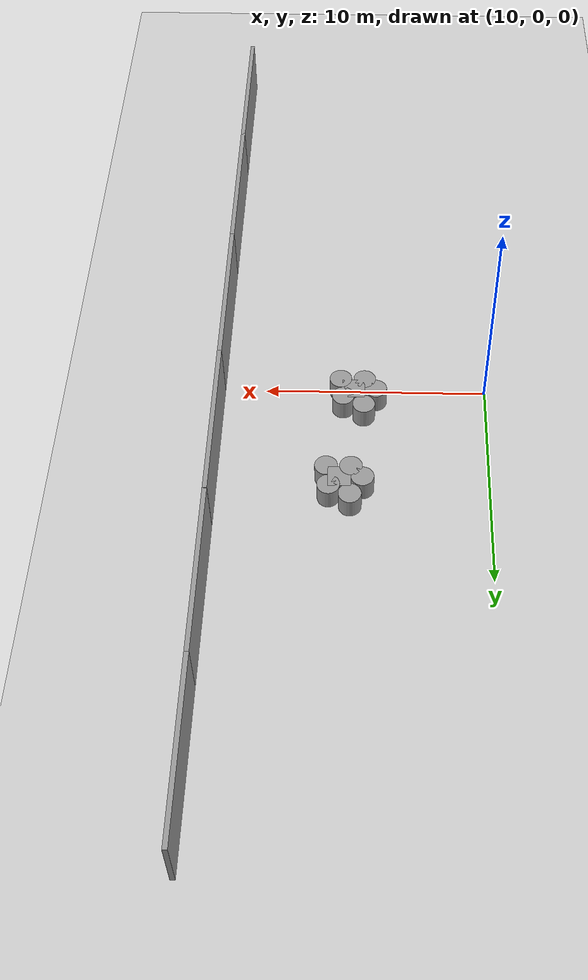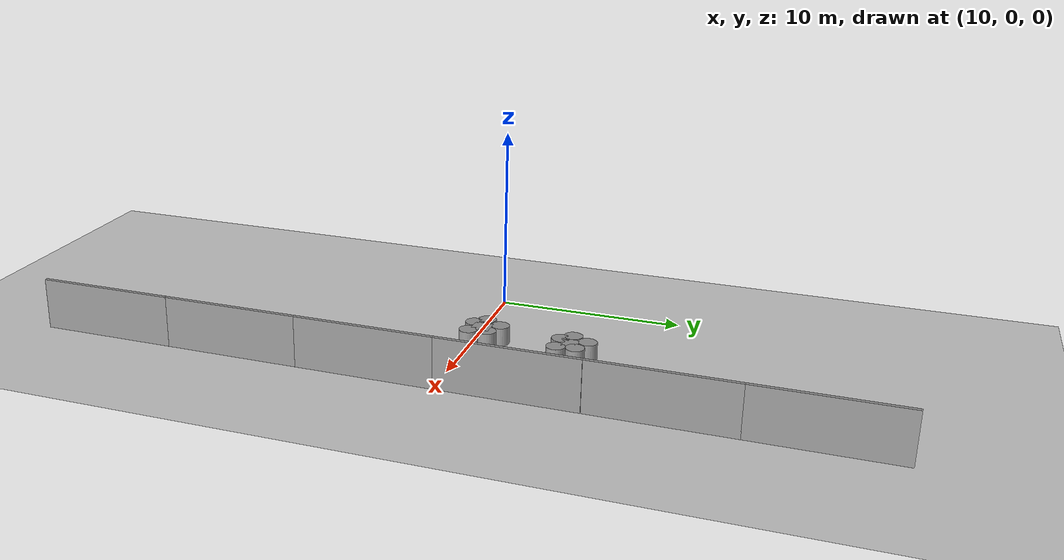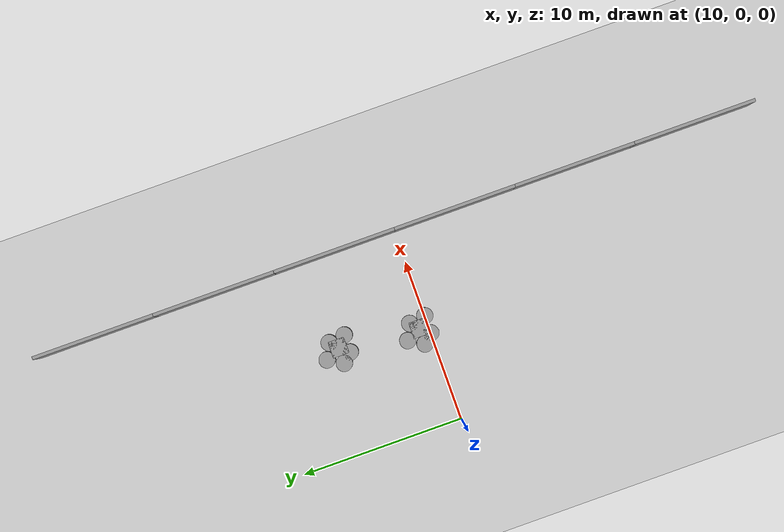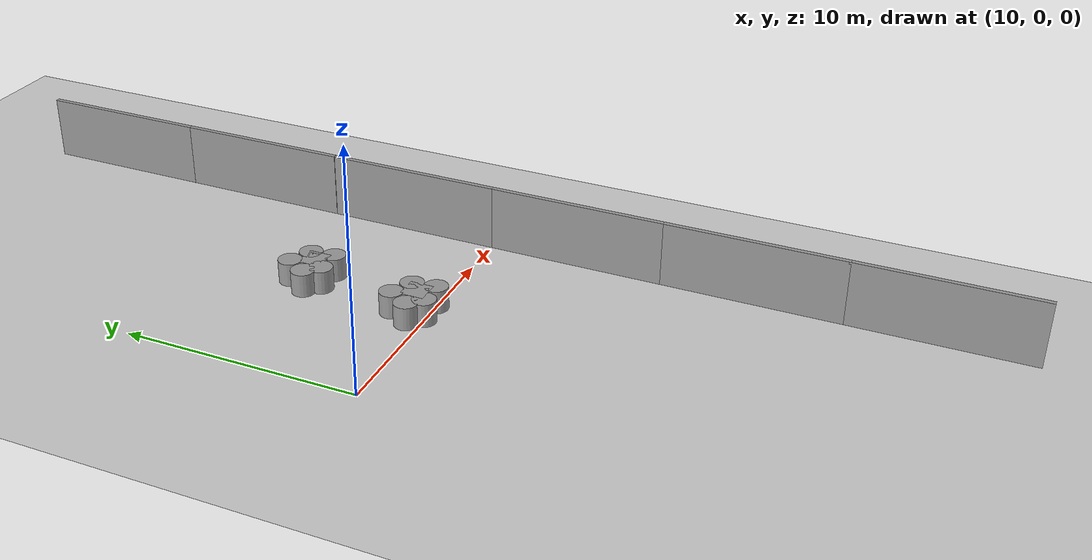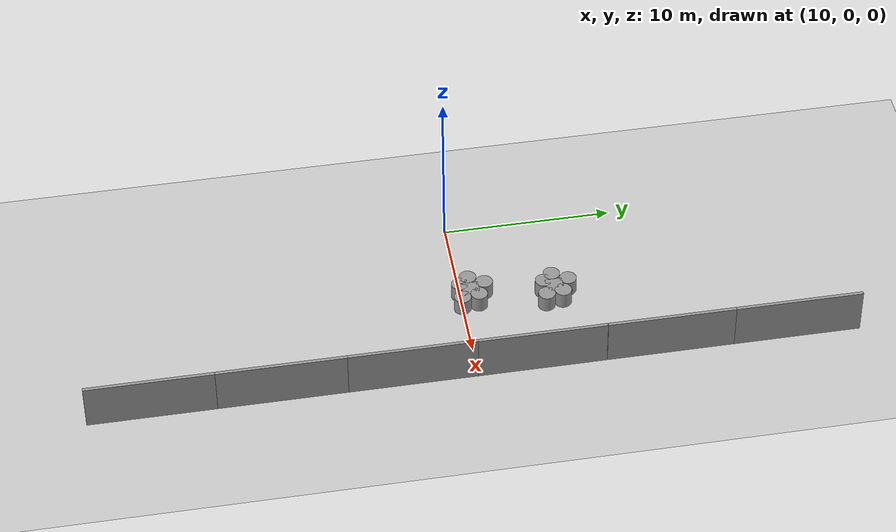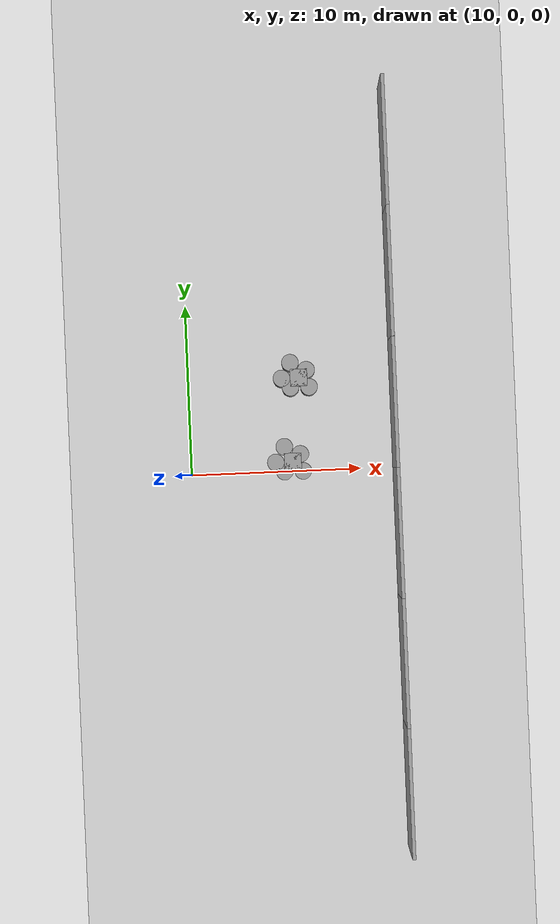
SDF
<sdf version="1.6">
 <world name="default">
  <model name="ground_plane">
   <static>1</static>
   <link name="link">
    <collision name="collision">
     <geometry><plane><normal>0 0 1</normal><size>100 100</size></plane></geometry>
     <surface><friction><ode><mu>100</mu><mu2>50</mu2></ode></friction></surface>
    </collision>
    <visual name="visual">
     <cast_shadows>0</cast_shadows>
     <geometry><plane><normal>0 0 1</normal><size>100 100</size></plane></geometry>
     <material>
      <script><uri>file://media/materials/scripts/gazebo.material</uri><name>Gazebo/Grey</name></script>
     </material>
    </visual>
   </link>
  </model>
  <model name="6walls_clone">
   <model name="grey_wall">
    <static>1</static>
    <link name="link">
     <pose>0 0 1.4 0 -0 0</pose>
     <collision name="collision"><geometry><box><size>7.5 0.2 2.8</size></box></geometry></collision>
     <visual name="visual">
      <cast_shadows>0</cast_shadows>
      <geometry><box><size>7.5 0.2 2.8</size></box></geometry>
      <material>
       <script>
        <uri>model://grey_wall/materials/scripts</uri>
        <uri>model://grey_wall/materials/textures</uri>
        <name>vrc/grey_wall</name>
       </script>
      </material>
     </visual>
    </link>
    <pose>-18.6834 0 0 0 -0 0</pose>
   </model>
   <model name="grey_wall_0">
    <static>1</static>
    <link name="link">
     <pose>0 0 1.4 0 -0 0</pose>
     <collision name="collision"><geometry><box><size>7.5 0.2 2.8</size></box></geometry></collision>
     <visual name="visual">
      <cast_shadows>0</cast_shadows>
      <geometry><box><size>7.5 0.2 2.8</size></box></geometry>
      <material>
       <script>
        <uri>model://grey_wall/materials/scripts</uri>
        <uri>model://grey_wall/materials/textures</uri>
        <name>vrc/grey_wall</name>
       </script>
      </material>
     </visual>
    </link>
    <pose>-11.2658 0 0 0 -0 0</pose>
   </model>
   <model name="grey_wall_1">
    <static>1</static>
    <link name="link">
     <pose>0 0 1.4 0 -0 0</pose>
     <collision name="collision"><geometry><box><size>7.5 0.2 2.8</size></box></geometry></collision>
     <visual name="visual">
      <cast_shadows>0</cast_shadows>
      <geometry><box><size>7.5 0.2 2.8</size></box></geometry>
      <material>
       <script>
        <uri>model://grey_wall/materials/scripts</uri>
        <uri>model://grey_wall/materials/textures</uri>
        <name>vrc/grey_wall</name>
       </script>
      </material>
     </visual>
    </link>
    <pose>-3.76669 0 0 0 -0 0</pose>
   </model>
   <model name="grey_wall_2">
    <static>1</static>
    <link name="link">
     <pose>0 0 1.4 0 -0 0</pose>
     <collision name="collision"><geometry><box><size>7.5 0.2 2.8</size></box></geometry></collision>
     <visual name="visual">
      <cast_shadows>0</cast_shadows>
      <geometry><box><size>7.5 0.2 2.8</size></box></geometry>
      <material>
       <script>
        <uri>model://grey_wall/materials/scripts</uri>
        <uri>model://grey_wall/materials/textures</uri>
        <name>vrc/grey_wall</name>
       </script>
      </material>
     </visual>
    </link>
    <pose>3.73421 0 0 0 -0 0</pose>
   </model>
   <model name="grey_wall_3">
    <static>1</static>
    <link name="link">
     <pose>0 0 1.4 0 -0 0</pose>
     <collision name="collision"><geometry><box><size>7.5 0.2 2.8</size></box></geometry></collision>
     <visual name="visual">
      <cast_shadows>0</cast_shadows>
      <geometry><box><size>7.5 0.2 2.8</size></box></geometry>
      <material>
       <script>
        <uri>model://grey_wall/materials/scripts</uri>
        <uri>model://grey_wall/materials/textures</uri>
        <name>vrc/grey_wall</name>
       </script>
      </material>
     </visual>
    </link>
    <pose>11.2475 0 0 0 -0 0</pose>
   </model>
   <model name="grey_wall_4">
    <static>1</static>
    <link name="link">
     <pose>0 0 1.4 0 -0 0</pose>
     <collision name="collision"><geometry><box><size>7.5 0.2 2.8</size></box></geometry></collision>
     <visual name="visual">
      <cast_shadows>0</cast_shadows>
      <geometry><box><size>7.5 0.2 2.8</size></box></geometry>
      <material>
       <script>
        <uri>model://grey_wall/materials/scripts</uri>
        <uri>model://grey_wall/materials/textures</uri>
        <name>vrc/grey_wall</name>
       </script>
      </material>
     </visual>
    </link>
    <pose>18.7342 0 0 0 -0 0</pose>
   </model>
   <static>0</static>
   <pose>21.9999 0 0 0 -0 1.5708</pose>
  </model>
  <model name="machine2">
   <link name="link_6">
    <pose>0.153167 -0.028269 0 0 -0 0</pose>
    <inertial>
     <mass>1</mass>
     <inertia>
      <ixx>0.166667</ixx>
      <ixy>0</ixy>
      <ixz>0</ixz>
      <iyy>0.166667</iyy>
      <iyz>0</iyz>
      <izz>0.166667</izz>
     </inertia>
    </inertial>
    <visual name="visual">
     <geometry><box><size>1 1 1</size></box></geometry>
     <material>
      <lighting>1</lighting>
      <script><uri>file://media/materials/scripts/gazebo.material</uri><name>Gazebo/Grey</name></script>
      <ambient>0.3 0.3 0.3 1</ambient>
      <diffuse>0.7 0.7 0.7 1</diffuse>
      <specular>0.01 0.01 0.01 1</specular>
      <emissive>0 0 0 1</emissive>
     </material>
    </visual>
    <collision name="collision">
     <geometry><box><size>1 1 1</size></box></geometry>
     <surface>
      <friction>
       <ode><mu>1</mu><mu2>1</mu2><fdir1>0 0 0</fdir1><slip1>0</slip1><slip2>0</slip2></ode>
       <torsional>
        <coefficient>1</coefficient>
        <patch_radius>0</patch_radius>
        <surface_radius>0</surface_radius>
        <use_patch_radius>1</use_patch_radius>
        <ode><slip>0</slip></ode>
       </torsional>
      </friction>
      <bounce><restitution_coefficient>0</restitution_coefficient><threshold>1e+06</threshold></bounce>
      <contact>
       <collide_without_contact>0</collide_without_contact>
       <collide_without_contact_bitmask>1</collide_without_contact_bitmask>
       <collide_bitmask>1</collide_bitmask>
       <ode>
        <soft_cfm>0</soft_cfm>
        <soft_erp>0.2</soft_erp>
        <kp>1e+13</kp>
        <kd>1</kd>
        <max_vel>0.01</max_vel>
        <min_depth>0</min_depth>
       </ode>
       <bullet>
        <split_impulse>1</split_impulse>
        <split_impulse_penetration_threshold>-0.01</split_impulse_penetration_threshold>
        <soft_cfm>0</soft_cfm>
        <soft_erp>0.2</soft_erp>
        <kp>1e+13</kp>
        <kd>1</kd>
       </bullet>
      </contact>
     </surface>
    </collision>
   </link>
   <link name="link_10">
    <pose>0.61205 0.404825 0 0 -0 0</pose>
    <inertial>
     <mass>1</mass>
     <inertia><ixx>0.145833</ixx><ixy>0</ixy><ixz>0</ixz><iyy>0.145833</iyy><iyz>0</iyz><izz>0.125</izz></inertia>
    </inertial>
    <visual name="visual">
     <geometry><cylinder><radius>0.5</radius><length>1</length></cylinder></geometry>
     <material>
      <lighting>1</lighting>
      <script><uri>file://media/materials/scripts/gazebo.material</uri><name>Gazebo/Grey</name></script>
      <ambient>0.3 0.3 0.3 1</ambient>
      <diffuse>0.7 0.7 0.7 1</diffuse>
      <specular>0.01 0.01 0.01 1</specular>
      <emissive>0 0 0 1</emissive>
     </material>
    </visual>
    <collision name="collision">
     <geometry><cylinder><radius>0.5</radius><length>1</length></cylinder></geometry>
     <surface>
      <friction>
       <ode><mu>1</mu><mu2>1</mu2><fdir1>0 0 0</fdir1><slip1>0</slip1><slip2>0</slip2></ode>
       <torsional>
        <coefficient>1</coefficient>
        <patch_radius>0</patch_radius>
        <surface_radius>0</surface_radius>
        <use_patch_radius>1</use_patch_radius>
        <ode><slip>0</slip></ode>
       </torsional>
      </friction>
      <bounce><restitution_coefficient>0</restitution_coefficient><threshold>1e+06</threshold></bounce>
      <contact>
       <collide_without_contact>0</collide_without_contact>
       <collide_without_contact_bitmask>1</collide_without_contact_bitmask>
       <collide_bitmask>1</collide_bitmask>
       <ode>
        <soft_cfm>0</soft_cfm>
        <soft_erp>0.2</soft_erp>
        <kp>1e+13</kp>
        <kd>1</kd>
        <max_vel>0.01</max_vel>
        <min_depth>0</min_depth>
       </ode>
       <bullet>
        <split_impulse>1</split_impulse>
        <split_impulse_penetration_threshold>-0.01</split_impulse_penetration_threshold>
        <soft_cfm>0</soft_cfm>
        <soft_erp>0.2</soft_erp>
        <kp>1e+13</kp>
        <kd>1</kd>
       </bullet>
      </contact>
     </surface>
    </collision>
   </link>
   <link name="link_11">
    <pose>0.739497 -0.595175 0 0 -0 0</pose>
    <inertial>
     <mass>1</mass>
     <inertia><ixx>0.145833</ixx><ixy>0</ixy><ixz>0</ixz><iyy>0.145833</iyy><iyz>0</iyz><izz>0.125</izz></inertia>
    </inertial>
    <visual name="visual">
     <geometry><cylinder><radius>0.5</radius><length>1</length></cylinder></geometry>
     <material>
      <lighting>1</lighting>
      <script><uri>file://media/materials/scripts/gazebo.material</uri><name>Gazebo/Grey</name></script>
      <ambient>0.3 0.3 0.3 1</ambient>
      <diffuse>0.7 0.7 0.7 1</diffuse>
      <specular>0.01 0.01 0.01 1</specular>
      <emissive>0 0 0 1</emissive>
     </material>
    </visual>
    <collision name="collision">
     <geometry><cylinder><radius>0.5</radius><length>1</length></cylinder></geometry>
     <surface>
      <friction>
       <ode><mu>1</mu><mu2>1</mu2><fdir1>0 0 0</fdir1><slip1>0</slip1><slip2>0</slip2></ode>
       <torsional>
        <coefficient>1</coefficient>
        <patch_radius>0</patch_radius>
        <surface_radius>0</surface_radius>
        <use_patch_radius>1</use_patch_radius>
        <ode><slip>0</slip></ode>
       </torsional>
      </friction>
      <bounce><restitution_coefficient>0</restitution_coefficient><threshold>1e+06</threshold></bounce>
      <contact>
       <collide_without_contact>0</collide_without_contact>
       <collide_without_contact_bitmask>1</collide_without_contact_bitmask>
       <collide_bitmask>1</collide_bitmask>
       <ode>
        <soft_cfm>0</soft_cfm>
        <soft_erp>0.2</soft_erp>
        <kp>1e+13</kp>
        <kd>1</kd>
        <max_vel>0.01</max_vel>
        <min_depth>0</min_depth>
       </ode>
       <bullet>
        <split_impulse>1</split_impulse>
        <split_impulse_penetration_threshold>-0.01</split_impulse_penetration_threshold>
        <soft_cfm>0</soft_cfm>
        <soft_erp>0.2</soft_erp>
        <kp>1e+13</kp>
        <kd>1</kd>
       </bullet>
      </contact>
     </surface>
    </collision>
   </link>
   <link name="link_12">
    <pose>-0.316153 0.858024 0 0 -0 0</pose>
    <inertial>
     <mass>1</mass>
     <inertia><ixx>0.145833</ixx><ixy>0</ixy><ixz>0</ixz><iyy>0.145833</iyy><iyz>0</iyz><izz>0.125</izz></inertia>
    </inertial>
    <visual name="visual">
     <geometry><cylinder><radius>0.5</radius><length>1</length></cylinder></geometry>
     <material>
      <lighting>1</lighting>
      <script><uri>file://media/materials/scripts/gazebo.material</uri><name>Gazebo/Grey</name></script>
      <ambient>0.3 0.3 0.3 1</ambient>
      <diffuse>0.7 0.7 0.7 1</diffuse>
      <specular>0.01 0.01 0.01 1</specular>
      <emissive>0 0 0 1</emissive>
     </material>
    </visual>
    <collision name="collision">
     <geometry><cylinder><radius>0.5</radius><length>1</length></cylinder></geometry>
     <surface>
      <friction>
       <ode><mu>1</mu><mu2>1</mu2><fdir1>0 0 0</fdir1><slip1>0</slip1><slip2>0</slip2></ode>
       <torsional>
        <coefficient>1</coefficient>
        <patch_radius>0</patch_radius>
        <surface_radius>0</surface_radius>
        <use_patch_radius>1</use_patch_radius>
        <ode><slip>0</slip></ode>
       </torsional>
      </friction>
      <bounce><restitution_coefficient>0</restitution_coefficient><threshold>1e+06</threshold></bounce>
      <contact>
       <collide_without_contact>0</collide_without_contact>
       <collide_without_contact_bitmask>1</collide_without_contact_bitmask>
       <collide_bitmask>1</collide_bitmask>
       <ode>
        <soft_cfm>0</soft_cfm>
        <soft_erp>0.2</soft_erp>
        <kp>1e+13</kp>
        <kd>1</kd>
        <max_vel>0.01</max_vel>
        <min_depth>0</min_depth>
       </ode>
       <bullet>
        <split_impulse>1</split_impulse>
        <split_impulse_penetration_threshold>-0.01</split_impulse_penetration_threshold>
        <soft_cfm>0</soft_cfm>
        <soft_erp>0.2</soft_erp>
        <kp>1e+13</kp>
        <kd>1</kd>
       </bullet>
      </contact>
     </surface>
    </collision>
   </link>
   <link name="link_8">
    <pose>-0.846833 -0.044231 0 0 -0 0</pose>
    <inertial>
     <mass>1</mass>
     <inertia><ixx>0.145833</ixx><ixy>0</ixy><ixz>0</ixz><iyy>0.145833</iyy><iyz>0</iyz><izz>0.125</izz></inertia>
    </inertial>
    <visual name="visual">
     <geometry><cylinder><radius>0.5</radius><length>1</length></cylinder></geometry>
     <material>
      <lighting>1</lighting>
      <script><uri>file://media/materials/scripts/gazebo.material</uri><name>Gazebo/Grey</name></script>
      <ambient>0.3 0.3 0.3 1</ambient>
      <diffuse>0.7 0.7 0.7 1</diffuse>
      <specular>0.01 0.01 0.01 1</specular>
      <emissive>0 0 0 1</emissive>
     </material>
    </visual>
    <collision name="collision">
     <geometry><cylinder><radius>0.5</radius><length>1</length></cylinder></geometry>
     <surface>
      <friction>
       <ode><mu>1</mu><mu2>1</mu2><fdir1>0 0 0</fdir1><slip1>0</slip1><slip2>0</slip2></ode>
       <torsional>
        <coefficient>1</coefficient>
        <patch_radius>0</patch_radius>
        <surface_radius>0</surface_radius>
        <use_patch_radius>1</use_patch_radius>
        <ode><slip>0</slip></ode>
       </torsional>
      </friction>
      <bounce><restitution_coefficient>0</restitution_coefficient><threshold>1e+06</threshold></bounce>
      <contact>
       <collide_without_contact>0</collide_without_contact>
       <collide_without_contact_bitmask>1</collide_without_contact_bitmask>
       <collide_bitmask>1</collide_bitmask>
       <ode>
        <soft_cfm>0</soft_cfm>
        <soft_erp>0.2</soft_erp>
        <kp>1e+13</kp>
        <kd>1</kd>
        <max_vel>0.01</max_vel>
        <min_depth>0</min_depth>
       </ode>
       <bullet>
        <split_impulse>1</split_impulse>
        <split_impulse_penetration_threshold>-0.01</split_impulse_penetration_threshold>
        <soft_cfm>0</soft_cfm>
        <soft_erp>0.2</soft_erp>
        <kp>1e+13</kp>
        <kd>1</kd>
       </bullet>
      </contact>
     </surface>
    </collision>
   </link>
   <link name="link_9">
    <pose>-0.34172 -0.595175 0 0 -0 0</pose>
    <inertial>
     <mass>1</mass>
     <inertia><ixx>0.145833</ixx><ixy>0</ixy><ixz>0</ixz><iyy>0.145833</iyy><iyz>0</iyz><izz>0.125</izz></inertia>
    </inertial>
    <visual name="visual">
     <geometry><cylinder><radius>0.5</radius><length>1</length></cylinder></geometry>
     <material>
      <lighting>1</lighting>
      <script><uri>file://media/materials/scripts/gazebo.material</uri><name>Gazebo/Grey</name></script>
      <ambient>0.3 0.3 0.3 1</ambient>
      <diffuse>0.7 0.7 0.7 1</diffuse>
      <specular>0.01 0.01 0.01 1</specular>
      <emissive>0 0 0 1</emissive>
     </material>
    </visual>
    <collision name="collision">
     <geometry><cylinder><radius>0.5</radius><length>1</length></cylinder></geometry>
     <surface>
      <friction>
       <ode><mu>1</mu><mu2>1</mu2><fdir1>0 0 0</fdir1><slip1>0</slip1><slip2>0</slip2></ode>
       <torsional>
        <coefficient>1</coefficient>
        <patch_radius>0</patch_radius>
        <surface_radius>0</surface_radius>
        <use_patch_radius>1</use_patch_radius>
        <ode><slip>0</slip></ode>
       </torsional>
      </friction>
      <bounce><restitution_coefficient>0</restitution_coefficient><threshold>1e+06</threshold></bounce>
      <contact>
       <collide_without_contact>0</collide_without_contact>
       <collide_without_contact_bitmask>1</collide_without_contact_bitmask>
       <collide_bitmask>1</collide_bitmask>
       <ode>
        <soft_cfm>0</soft_cfm>
        <soft_erp>0.2</soft_erp>
        <kp>1e+13</kp>
        <kd>1</kd>
        <max_vel>0.01</max_vel>
        <min_depth>0</min_depth>
       </ode>
       <bullet>
        <split_impulse>1</split_impulse>
        <split_impulse_penetration_threshold>-0.01</split_impulse_penetration_threshold>
        <soft_cfm>0</soft_cfm>
        <soft_erp>0.2</soft_erp>
        <kp>1e+13</kp>
        <kd>1</kd>
       </bullet>
      </contact>
     </surface>
    </collision>
   </link>
   <static>0</static>
   <pose>15.8468 0.595175 0.5 0 -0 0</pose>
  </model>
  <model name="machine2_clone_0">
   <link name="link_6">
    <pose>0.153167 -0.028269 0 0 -0 0</pose>
    <inertial>
     <mass>1</mass>
     <inertia>
      <ixx>0.166667</ixx>
      <ixy>0</ixy>
      <ixz>0</ixz>
      <iyy>0.166667</iyy>
      <iyz>0</iyz>
      <izz>0.166667</izz>
     </inertia>
    </inertial>
    <visual name="visual">
     <geometry><box><size>1 1 1</size></box></geometry>
     <material>
      <lighting>1</lighting>
      <script><uri>file://media/materials/scripts/gazebo.material</uri><name>Gazebo/Grey</name></script>
      <ambient>0.3 0.3 0.3 1</ambient>
      <diffuse>0.7 0.7 0.7 1</diffuse>
      <specular>0.01 0.01 0.01 1</specular>
      <emissive>0 0 0 1</emissive>
     </material>
    </visual>
    <collision name="collision">
     <geometry><box><size>1 1 1</size></box></geometry>
     <surface>
      <friction>
       <ode><mu>1</mu><mu2>1</mu2><fdir1>0 0 0</fdir1><slip1>0</slip1><slip2>0</slip2></ode>
       <torsional>
        <coefficient>1</coefficient>
        <patch_radius>0</patch_radius>
        <surface_radius>0</surface_radius>
        <use_patch_radius>1</use_patch_radius>
        <ode><slip>0</slip></ode>
       </torsional>
      </friction>
      <bounce><restitution_coefficient>0</restitution_coefficient><threshold>1e+06</threshold></bounce>
      <contact>
       <collide_without_contact>0</collide_without_contact>
       <collide_without_contact_bitmask>1</collide_without_contact_bitmask>
       <collide_bitmask>1</collide_bitmask>
       <ode>
        <soft_cfm>0</soft_cfm>
        <soft_erp>0.2</soft_erp>
        <kp>1e+13</kp>
        <kd>1</kd>
        <max_vel>0.01</max_vel>
        <min_depth>0</min_depth>
       </ode>
       <bullet>
        <split_impulse>1</split_impulse>
        <split_impulse_penetration_threshold>-0.01</split_impulse_penetration_threshold>
        <soft_cfm>0</soft_cfm>
        <soft_erp>0.2</soft_erp>
        <kp>1e+13</kp>
        <kd>1</kd>
       </bullet>
      </contact>
     </surface>
    </collision>
   </link>
   <link name="link_10">
    <pose>0.61205 0.404825 0 0 -0 0</pose>
    <inertial>
     <mass>1</mass>
     <inertia><ixx>0.145833</ixx><ixy>0</ixy><ixz>0</ixz><iyy>0.145833</iyy><iyz>0</iyz><izz>0.125</izz></inertia>
    </inertial>
    <visual name="visual">
     <geometry><cylinder><radius>0.5</radius><length>1</length></cylinder></geometry>
     <material>
      <lighting>1</lighting>
      <script><uri>file://media/materials/scripts/gazebo.material</uri><name>Gazebo/Grey</name></script>
      <ambient>0.3 0.3 0.3 1</ambient>
      <diffuse>0.7 0.7 0.7 1</diffuse>
      <specular>0.01 0.01 0.01 1</specular>
      <emissive>0 0 0 1</emissive>
     </material>
    </visual>
    <collision name="collision">
     <geometry><cylinder><radius>0.5</radius><length>1</length></cylinder></geometry>
     <surface>
      <friction>
       <ode><mu>1</mu><mu2>1</mu2><fdir1>0 0 0</fdir1><slip1>0</slip1><slip2>0</slip2></ode>
       <torsional>
        <coefficient>1</coefficient>
        <patch_radius>0</patch_radius>
        <surface_radius>0</surface_radius>
        <use_patch_radius>1</use_patch_radius>
        <ode><slip>0</slip></ode>
       </torsional>
      </friction>
      <bounce><restitution_coefficient>0</restitution_coefficient><threshold>1e+06</threshold></bounce>
      <contact>
       <collide_without_contact>0</collide_without_contact>
       <collide_without_contact_bitmask>1</collide_without_contact_bitmask>
       <collide_bitmask>1</collide_bitmask>
       <ode>
        <soft_cfm>0</soft_cfm>
        <soft_erp>0.2</soft_erp>
        <kp>1e+13</kp>
        <kd>1</kd>
        <max_vel>0.01</max_vel>
        <min_depth>0</min_depth>
       </ode>
       <bullet>
        <split_impulse>1</split_impulse>
        <split_impulse_penetration_threshold>-0.01</split_impulse_penetration_threshold>
        <soft_cfm>0</soft_cfm>
        <soft_erp>0.2</soft_erp>
        <kp>1e+13</kp>
        <kd>1</kd>
       </bullet>
      </contact>
     </surface>
    </collision>
   </link>
   <link name="link_11">
    <pose>0.739497 -0.595175 0 0 -0 0</pose>
    <inertial>
     <mass>1</mass>
     <inertia><ixx>0.145833</ixx><ixy>0</ixy><ixz>0</ixz><iyy>0.145833</iyy><iyz>0</iyz><izz>0.125</izz></inertia>
    </inertial>
    <visual name="visual">
     <geometry><cylinder><radius>0.5</radius><length>1</length></cylinder></geometry>
     <material>
      <lighting>1</lighting>
      <script><uri>file://media/materials/scripts/gazebo.material</uri><name>Gazebo/Grey</name></script>
      <ambient>0.3 0.3 0.3 1</ambient>
      <diffuse>0.7 0.7 0.7 1</diffuse>
      <specular>0.01 0.01 0.01 1</specular>
      <emissive>0 0 0 1</emissive>
     </material>
    </visual>
    <collision name="collision">
     <geometry><cylinder><radius>0.5</radius><length>1</length></cylinder></geometry>
     <surface>
      <friction>
       <ode><mu>1</mu><mu2>1</mu2><fdir1>0 0 0</fdir1><slip1>0</slip1><slip2>0</slip2></ode>
       <torsional>
        <coefficient>1</coefficient>
        <patch_radius>0</patch_radius>
        <surface_radius>0</surface_radius>
        <use_patch_radius>1</use_patch_radius>
        <ode><slip>0</slip></ode>
       </torsional>
      </friction>
      <bounce><restitution_coefficient>0</restitution_coefficient><threshold>1e+06</threshold></bounce>
      <contact>
       <collide_without_contact>0</collide_without_contact>
       <collide_without_contact_bitmask>1</collide_without_contact_bitmask>
       <collide_bitmask>1</collide_bitmask>
       <ode>
        <soft_cfm>0</soft_cfm>
        <soft_erp>0.2</soft_erp>
        <kp>1e+13</kp>
        <kd>1</kd>
        <max_vel>0.01</max_vel>
        <min_depth>0</min_depth>
       </ode>
       <bullet>
        <split_impulse>1</split_impulse>
        <split_impulse_penetration_threshold>-0.01</split_impulse_penetration_threshold>
        <soft_cfm>0</soft_cfm>
        <soft_erp>0.2</soft_erp>
        <kp>1e+13</kp>
        <kd>1</kd>
       </bullet>
      </contact>
     </surface>
    </collision>
   </link>
   <link name="link_12">
    <pose>-0.316153 0.858024 0 0 -0 0</pose>
    <inertial>
     <mass>1</mass>
     <inertia><ixx>0.145833</ixx><ixy>0</ixy><ixz>0</ixz><iyy>0.145833</iyy><iyz>0</iyz><izz>0.125</izz></inertia>
    </inertial>
    <visual name="visual">
     <geometry><cylinder><radius>0.5</radius><length>1</length></cylinder></geometry>
     <material>
      <lighting>1</lighting>
      <script><uri>file://media/materials/scripts/gazebo.material</uri><name>Gazebo/Grey</name></script>
      <ambient>0.3 0.3 0.3 1</ambient>
      <diffuse>0.7 0.7 0.7 1</diffuse>
      <specular>0.01 0.01 0.01 1</specular>
      <emissive>0 0 0 1</emissive>
     </material>
    </visual>
    <collision name="collision">
     <geometry><cylinder><radius>0.5</radius><length>1</length></cylinder></geometry>
     <surface>
      <friction>
       <ode><mu>1</mu><mu2>1</mu2><fdir1>0 0 0</fdir1><slip1>0</slip1><slip2>0</slip2></ode>
       <torsional>
        <coefficient>1</coefficient>
        <patch_radius>0</patch_radius>
        <surface_radius>0</surface_radius>
        <use_patch_radius>1</use_patch_radius>
        <ode><slip>0</slip></ode>
       </torsional>
      </friction>
      <bounce><restitution_coefficient>0</restitution_coefficient><threshold>1e+06</threshold></bounce>
      <contact>
       <collide_without_contact>0</collide_without_contact>
       <collide_without_contact_bitmask>1</collide_without_contact_bitmask>
       <collide_bitmask>1</collide_bitmask>
       <ode>
        <soft_cfm>0</soft_cfm>
        <soft_erp>0.2</soft_erp>
        <kp>1e+13</kp>
        <kd>1</kd>
        <max_vel>0.01</max_vel>
        <min_depth>0</min_depth>
       </ode>
       <bullet>
        <split_impulse>1</split_impulse>
        <split_impulse_penetration_threshold>-0.01</split_impulse_penetration_threshold>
        <soft_cfm>0</soft_cfm>
        <soft_erp>0.2</soft_erp>
        <kp>1e+13</kp>
        <kd>1</kd>
       </bullet>
      </contact>
     </surface>
    </collision>
   </link>
   <link name="link_8">
    <pose>-0.846833 -0.044231 0 0 -0 0</pose>
    <inertial>
     <mass>1</mass>
     <inertia><ixx>0.145833</ixx><ixy>0</ixy><ixz>0</ixz><iyy>0.145833</iyy><iyz>0</iyz><izz>0.125</izz></inertia>
    </inertial>
    <visual name="visual">
     <geometry><cylinder><radius>0.5</radius><length>1</length></cylinder></geometry>
     <material>
      <lighting>1</lighting>
      <script><uri>file://media/materials/scripts/gazebo.material</uri><name>Gazebo/Grey</name></script>
      <ambient>0.3 0.3 0.3 1</ambient>
      <diffuse>0.7 0.7 0.7 1</diffuse>
      <specular>0.01 0.01 0.01 1</specular>
      <emissive>0 0 0 1</emissive>
     </material>
    </visual>
    <collision name="collision">
     <geometry><cylinder><radius>0.5</radius><length>1</length></cylinder></geometry>
     <surface>
      <friction>
       <ode><mu>1</mu><mu2>1</mu2><fdir1>0 0 0</fdir1><slip1>0</slip1><slip2>0</slip2></ode>
       <torsional>
        <coefficient>1</coefficient>
        <patch_radius>0</patch_radius>
        <surface_radius>0</surface_radius>
        <use_patch_radius>1</use_patch_radius>
        <ode><slip>0</slip></ode>
       </torsional>
      </friction>
      <bounce><restitution_coefficient>0</restitution_coefficient><threshold>1e+06</threshold></bounce>
      <contact>
       <collide_without_contact>0</collide_without_contact>
       <collide_without_contact_bitmask>1</collide_without_contact_bitmask>
       <collide_bitmask>1</collide_bitmask>
       <ode>
        <soft_cfm>0</soft_cfm>
        <soft_erp>0.2</soft_erp>
        <kp>1e+13</kp>
        <kd>1</kd>
        <max_vel>0.01</max_vel>
        <min_depth>0</min_depth>
       </ode>
       <bullet>
        <split_impulse>1</split_impulse>
        <split_impulse_penetration_threshold>-0.01</split_impulse_penetration_threshold>
        <soft_cfm>0</soft_cfm>
        <soft_erp>0.2</soft_erp>
        <kp>1e+13</kp>
        <kd>1</kd>
       </bullet>
      </contact>
     </surface>
    </collision>
   </link>
   <link name="link_9">
    <pose>-0.34172 -0.595175 0 0 -0 0</pose>
    <inertial>
     <mass>1</mass>
     <inertia><ixx>0.145833</ixx><ixy>0</ixy><ixz>0</ixz><iyy>0.145833</iyy><iyz>0</iyz><izz>0.125</izz></inertia>
    </inertial>
    <visual name="visual">
     <geometry><cylinder><radius>0.5</radius><length>1</length></cylinder></geometry>
     <material>
      <lighting>1</lighting>
      <script><uri>file://media/materials/scripts/gazebo.material</uri><name>Gazebo/Grey</name></script>
      <ambient>0.3 0.3 0.3 1</ambient>
      <diffuse>0.7 0.7 0.7 1</diffuse>
      <specular>0.01 0.01 0.01 1</specular>
      <emissive>0 0 0 1</emissive>
     </material>
    </visual>
    <collision name="collision">
     <geometry><cylinder><radius>0.5</radius><length>1</length></cylinder></geometry>
     <surface>
      <friction>
       <ode><mu>1</mu><mu2>1</mu2><fdir1>0 0 0</fdir1><slip1>0</slip1><slip2>0</slip2></ode>
       <torsional>
        <coefficient>1</coefficient>
        <patch_radius>0</patch_radius>
        <surface_radius>0</surface_radius>
        <use_patch_radius>1</use_patch_radius>
        <ode><slip>0</slip></ode>
       </torsional>
      </friction>
      <bounce><restitution_coefficient>0</restitution_coefficient><threshold>1e+06</threshold></bounce>
      <contact>
       <collide_without_contact>0</collide_without_contact>
       <collide_without_contact_bitmask>1</collide_without_contact_bitmask>
       <collide_bitmask>1</collide_bitmask>
       <ode>
        <soft_cfm>0</soft_cfm>
        <soft_erp>0.2</soft_erp>
        <kp>1e+13</kp>
        <kd>1</kd>
        <max_vel>0.01</max_vel>
        <min_depth>0</min_depth>
       </ode>
       <bullet>
        <split_impulse>1</split_impulse>
        <split_impulse_penetration_threshold>-0.01</split_impulse_penetration_threshold>
        <soft_cfm>0</soft_cfm>
        <soft_erp>0.2</soft_erp>
        <kp>1e+13</kp>
        <kd>1</kd>
       </bullet>
      </contact>
     </surface>
    </collision>
   </link>
   <static>0</static>
   <pose>16.3799 5.50095 0.5 0 -0 0</pose>
  </model>
 </world>
</sdf>
